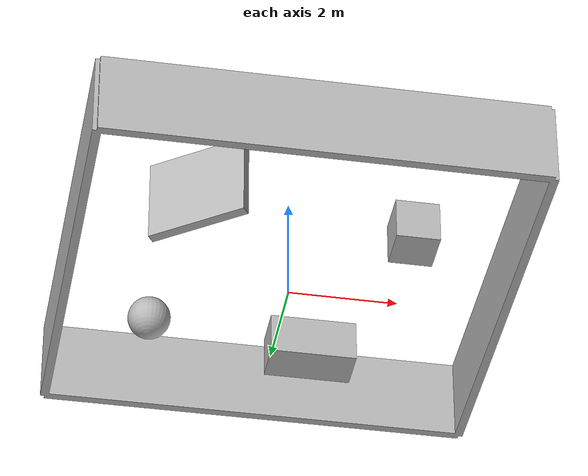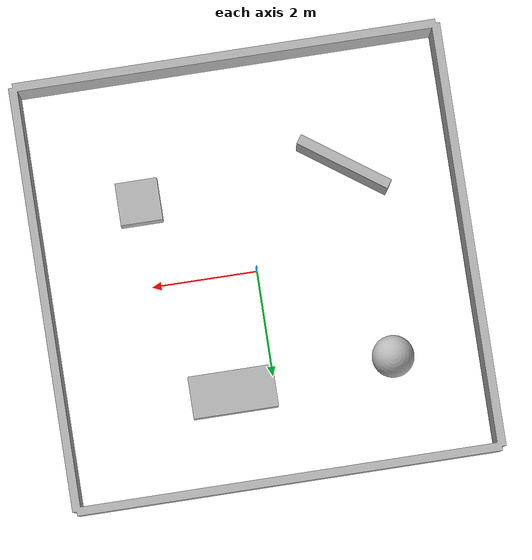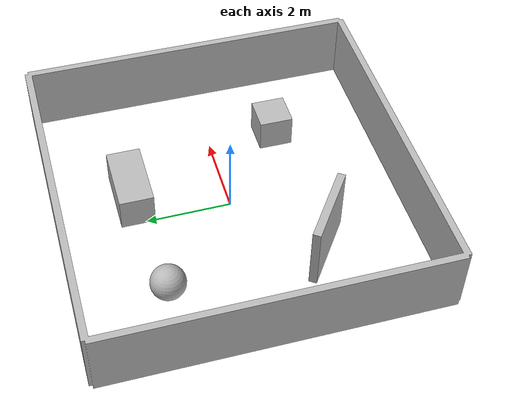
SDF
<?xml version='1.0' ?>
<sdf version='1.6'>
  <model name='navigation_environment'>
    <static>true</static>
    <link name='base_link'>
      <inertial>
        <mass>1</mass>
        <inertia>
          <ixx>1</ixx>
          <iyy>1</iyy>
          <izz>1</izz>
          <ixy>0</ixy>
          <ixz>0</ixz>
          <iyz>0</iyz>
        </inertia>
      </inertial>
      <collision name='base_link_collision'>
        <geometry>
          <mesh>
            <scale>0.4 0.4 0.4</scale>
            <uri>model://navigation_environment/meshes/mesh.dae</uri>
          </mesh>
        </geometry>
      </collision>
      <visual name='base_link_visual'>
        <geometry>
          <mesh>
            <scale>0.4 0.4 0.4</scale>
            <uri>model://navigation_environment/meshes/mesh.dae</uri>
          </mesh>
        </geometry>
      </visual>
    </link>
  </model>
</sdf>
